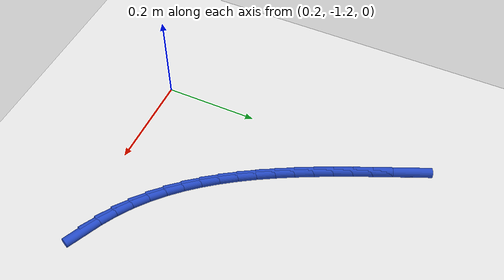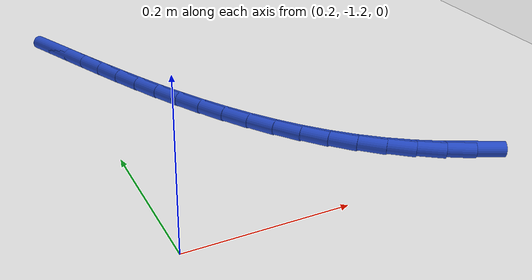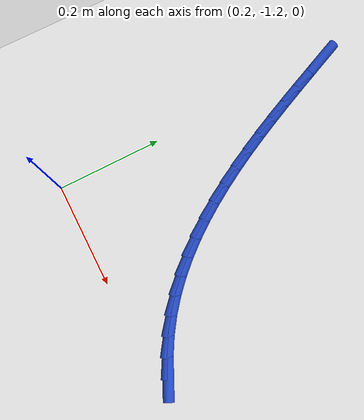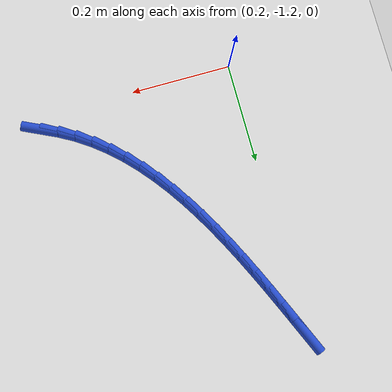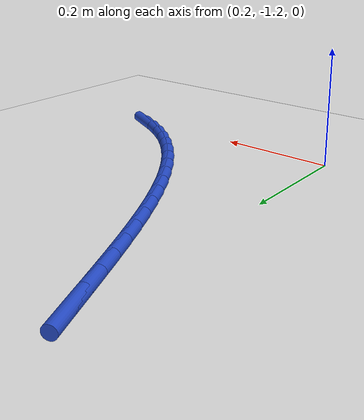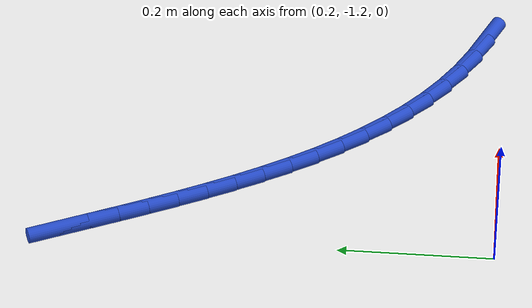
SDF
<sdf version="1.6">
 <world name="default">
  <model name="ground_plane">
   <static>1</static>
   <link name="link">
    <collision name="collision">
     <geometry><plane><normal>0 0 1</normal><size>100 100</size></plane></geometry>
     <surface><friction><ode><mu>100</mu><mu2>50</mu2></ode></friction></surface>
    </collision>
    <visual name="visual">
     <cast_shadows>0</cast_shadows>
     <geometry><plane><normal>0 0 1</normal><size>100 100</size></plane></geometry>
     <material>
      <script><uri>file://media/materials/scripts/gazebo.material</uri><name>Gazebo/WhiteGlow</name></script>
     </material>
    </visual>
   </link>
  </model>
  <model name="line">
   <link name="link_194">
    <pose>0.595147904833582 -1.174434293418801 0.01 0 1.57 -0.44387885741833205</pose>
    <collision name="collision">
     <geometry><cylinder><radius>0.01</radius><length>0.08</length></cylinder></geometry>
    </collision>
    <visual name="visual">
     <material>
      <script><name>Gazebo/Blue</name><uri>file://media/materials/scripts/gazebo.material</uri></script>
     </material>
     <geometry><cylinder><radius>0.01</radius><length>0.08</length></cylinder></geometry>
    </visual>
   </link>
   <link name="link_195">
    <pose>0.5622775305985186 -1.1588035178156015 0.01 0 1.57 -0.5181878911899743</pose>
    <collision name="collision">
     <geometry><cylinder><radius>0.01</radius><length>0.08</length></cylinder></geometry>
    </collision>
    <visual name="visual">
     <material>
      <script><name>Gazebo/Blue</name><uri>file://media/materials/scripts/gazebo.material</uri></script>
     </material>
     <geometry><cylinder><radius>0.01</radius><length>0.08</length></cylinder></geometry>
    </visual>
   </link>
   <link name="link_196">
    <pose>0.531246091893103 -1.1411106899935066 0.01 0 1.57 -0.6007807674606368</pose>
    <collision name="collision">
     <geometry><cylinder><radius>0.01</radius><length>0.08</length></cylinder></geometry>
    </collision>
    <visual name="visual">
     <material>
      <script><name>Gazebo/Blue</name><uri>file://media/materials/scripts/gazebo.material</uri></script>
     </material>
     <geometry><cylinder><radius>0.01</radius><length>0.08</length></cylinder></geometry>
    </visual>
   </link>
   <link name="link_197">
    <pose>0.5019739017525428 -1.1210509375251303 0.01 0 1.57 -0.678536035881542</pose>
    <collision name="collision">
     <geometry><cylinder><radius>0.01</radius><length>0.08</length></cylinder></geometry>
    </collision>
    <visual name="visual">
     <material>
      <script><name>Gazebo/Blue</name><uri>file://media/materials/scripts/gazebo.material</uri></script>
     </material>
     <geometry><cylinder><radius>0.01</radius><length>0.08</length></cylinder></geometry>
    </visual>
   </link>
   <link name="link_198">
    <pose>0.4743527444927851 -1.0987815745561882 0.01 0 1.57 -0.7505557044541225</pose>
    <collision name="collision">
     <geometry><cylinder><radius>0.01</radius><length>0.08</length></cylinder></geometry>
    </collision>
    <visual name="visual">
     <material>
      <script><name>Gazebo/Blue</name><uri>file://media/materials/scripts/gazebo.material</uri></script>
     </material>
     <geometry><cylinder><radius>0.01</radius><length>0.08</length></cylinder></geometry>
    </visual>
   </link>
   <link name="link_199">
    <pose>0.4482743993463288 -1.0744599975880333 0.01 0 1.57 -0.8163091969899705</pose>
    <collision name="collision">
     <geometry><cylinder><radius>0.01</radius><length>0.08</length></cylinder></geometry>
    </collision>
    <visual name="visual">
     <material>
      <script><name>Gazebo/Blue</name><uri>file://media/materials/scripts/gazebo.material</uri></script>
     </material>
     <geometry><cylinder><radius>0.01</radius><length>0.08</length></cylinder></geometry>
    </visual>
   </link>
   <link name="link_200">
    <pose>0.4236306455456731 -1.0482436031220201 0.01 0 1.57 -0.8755824355925814</pose>
    <collision name="collision">
     <geometry><cylinder><radius>0.01</radius><length>0.08</length></cylinder></geometry>
    </collision>
    <visual name="visual">
     <material>
      <script><name>Gazebo/Blue</name><uri>file://media/materials/scripts/gazebo.material</uri></script>
     </material>
     <geometry><cylinder><radius>0.01</radius><length>0.08</length></cylinder></geometry>
    </visual>
   </link>
   <link name="link_201">
    <pose>0.4003132623233164 -1.0202897876595012 0.01 0 1.57 -0.9284044884479989</pose>
    <collision name="collision">
     <geometry><cylinder><radius>0.01</radius><length>0.08</length></cylinder></geometry>
    </collision>
    <visual name="visual">
     <material>
      <script><name>Gazebo/Blue</name><uri>file://media/materials/scripts/gazebo.material</uri></script>
     </material>
     <geometry><cylinder><radius>0.01</radius><length>0.08</length></cylinder></geometry>
    </visual>
   </link>
   <link name="link_202">
    <pose>0.37821402891175937 -0.9907559477018317 0.01 0 1.57 -0.974970429017268</pose>
    <collision name="collision">
     <geometry><cylinder><radius>0.01</radius><length>0.08</length></cylinder></geometry>
    </collision>
    <visual name="visual">
     <material>
      <script><name>Gazebo/Blue</name><uri>file://media/materials/scripts/gazebo.material</uri></script>
     </material>
     <geometry><cylinder><radius>0.01</radius><length>0.08</length></cylinder></geometry>
    </visual>
   </link>
   <link name="link_203">
    <pose>0.3572247245435007 -0.9597994797503654 0.01 0 1.57 -1.0155732619610913</pose>
    <collision name="collision">
     <geometry><cylinder><radius>0.01</radius><length>0.08</length></cylinder></geometry>
    </collision>
    <visual name="visual">
     <material>
      <script><name>Gazebo/Blue</name><uri>file://media/materials/scripts/gazebo.material</uri></script>
     </material>
     <geometry><cylinder><radius>0.01</radius><length>0.08</length></cylinder></geometry>
    </visual>
   </link>
   <link name="link_204">
    <pose>0.33723712845103937 -0.9275777803064557 0.01 0 1.57 -1.050550307100253</pose>
    <collision name="collision">
     <geometry><cylinder><radius>0.01</radius><length>0.08</length></cylinder></geometry>
    </collision>
    <visual name="visual">
     <material>
      <script><name>Gazebo/Blue</name><uri>file://media/materials/scripts/gazebo.material</uri></script>
     </material>
     <geometry><cylinder><radius>0.01</radius><length>0.08</length></cylinder></geometry>
    </visual>
   </link>
   <link name="link_205">
    <pose>0.318143019866875 -0.8942482458714566 0.01 0 1.57 -1.0802443859666475</pose>
    <collision name="collision">
     <geometry><cylinder><radius>0.01</radius><length>0.08</length></cylinder></geometry>
    </collision>
    <visual name="visual">
     <material>
      <script><name>Gazebo/Blue</name><uri>file://media/materials/scripts/gazebo.material</uri></script>
     </material>
     <geometry><cylinder><radius>0.01</radius><length>0.08</length></cylinder></geometry>
    </visual>
   </link>
   <link name="link_206">
    <pose>0.29983417802350615 -0.8599682729467211 0.01 0 1.57 -1.1049775939815283</pose>
    <collision name="collision">
     <geometry><cylinder><radius>0.01</radius><length>0.08</length></cylinder></geometry>
    </collision>
    <visual name="visual">
     <material>
      <script><name>Gazebo/Blue</name><uri>file://media/materials/scripts/gazebo.material</uri></script>
     </material>
     <geometry><cylinder><radius>0.01</radius><length>0.08</length></cylinder></geometry>
    </visual>
   </link>
   <link name="link_207">
    <pose>0.28220238215343296 -0.8248952580336046 0.01 0 1.57 -1.1250346251321521</pose>
    <collision name="collision">
     <geometry><cylinder><radius>0.01</radius><length>0.08</length></cylinder></geometry>
    </collision>
    <visual name="visual">
     <material>
      <script><name>Gazebo/Blue</name><uri>file://media/materials/scripts/gazebo.material</uri></script>
     </material>
     <geometry><cylinder><radius>0.01</radius><length>0.08</length></cylinder></geometry>
    </visual>
   </link>
   <link name="link_208">
    <pose>0.2651394114891543 -0.7891865976334602 0.01 0 1.57 -1.1406527503521817</pose>
    <collision name="collision">
     <geometry><cylinder><radius>0.01</radius><length>0.08</length></cylinder></geometry>
    </collision>
    <visual name="visual">
     <material>
      <script><name>Gazebo/Blue</name><uri>file://media/materials/scripts/gazebo.material</uri></script>
     </material>
     <geometry><cylinder><radius>0.01</radius><length>0.08</length></cylinder></geometry>
    </visual>
   </link>
   <link name="link_209">
    <pose>0.24853704526316953 -0.7529996882476419 0.01 0 1.57 -1.1520160716826875</pose>
    <collision name="collision">
     <geometry><cylinder><radius>0.01</radius><length>0.08</length></cylinder></geometry>
    </collision>
    <visual name="visual">
     <material>
      <script><name>Gazebo/Blue</name><uri>file://media/materials/scripts/gazebo.material</uri></script>
     </material>
     <geometry><cylinder><radius>0.01</radius><length>0.08</length></cylinder></geometry>
    </visual>
   </link>
   <link name="link_210">
    <pose>0.2322870627079773 -0.7164919263775023 0.01 0 1.57 -1.159252266886277</pose>
    <collision name="collision">
     <geometry><cylinder><radius>0.01</radius><length>0.08</length></cylinder></geometry>
    </collision>
    <visual name="visual">
     <material>
      <script><name>Gazebo/Blue</name><uri>file://media/materials/scripts/gazebo.material</uri></script>
     </material>
     <geometry><cylinder><radius>0.01</radius><length>0.08</length></cylinder></geometry>
    </visual>
   </link>
   <link name="link_211">
    <pose>0.21628124305607788 -0.6798207085243976 0.01 0 1.57 -1.1624305652788942</pose>
    <collision name="collision">
     <geometry><cylinder><radius>0.01</radius><length>0.08</length></cylinder></geometry>
    </collision>
    <visual name="visual">
     <material>
      <script><name>Gazebo/Blue</name><uri>file://media/materials/scripts/gazebo.material</uri></script>
     </material>
     <geometry><cylinder><radius>0.01</radius><length>0.08</length></cylinder></geometry>
    </visual>
   </link>
   <link name="link_212">
    <pose>0.2004113655399699 -0.6431434311896802 0.01 0 1.57 -1.161560118257286</pose>
    <collision name="collision">
     <geometry><cylinder><radius>0.01</radius><length>0.08</length></cylinder></geometry>
    </collision>
    <visual name="visual">
     <material>
      <script><name>Gazebo/Blue</name><uri>file://media/materials/scripts/gazebo.material</uri></script>
     </material>
     <geometry><cylinder><radius>0.01</radius><length>0.08</length></cylinder></geometry>
    </visual>
   </link>
  </model>
 </world>
</sdf>
